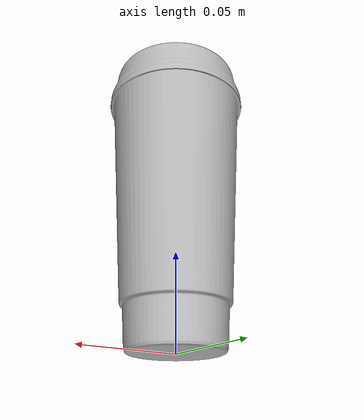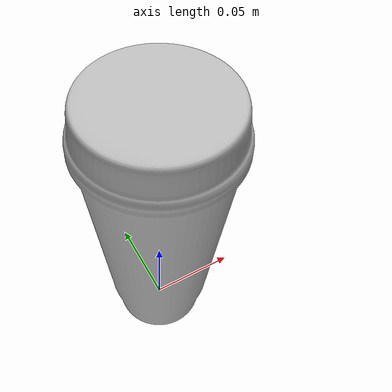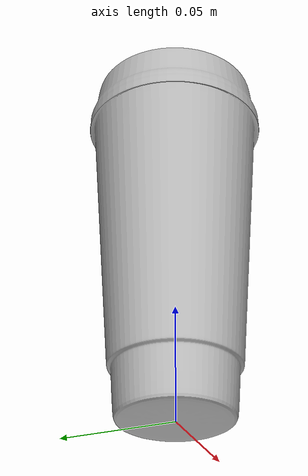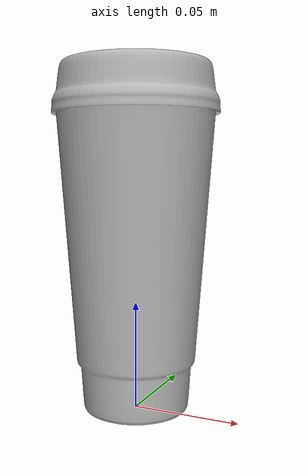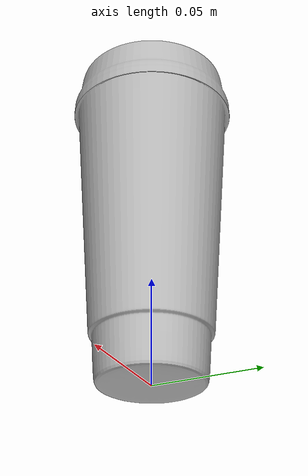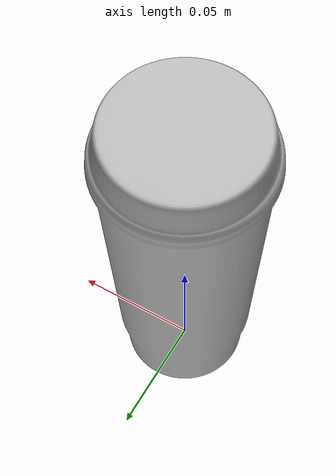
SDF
<?xml version='1.0'?>
<sdf version='1.4'>
  <model name="coffee_large">
    <pose>0 0 0  0 0 0</pose>

    <link name="body">
      <inertial>
        <mass>1</mass>
      </inertial>

      <gravity>1</gravity>

      <visual name="visual">
        <geometry>
          <mesh>
            <uri>model://costa_large/costa_coffee_large.dae</uri>
            <scale>0.01 0.01 0.01</scale>
          </mesh>
        </geometry>
      </visual>

      <collision name='collision'>
        <geometry>
            <mesh>
              <uri>model://costa_large/costa_coffee_large.dae</uri>
              <scale>0.01 0.01 0.01</scale>
            </mesh>
          </geometry>
      </collision>

      <surface>
        <friction>
          <ode>
            <mu>100.0</mu>
            <mu2>100.0</mu2>
          </ode>
        </friction>
      </surface>

    </link>

    <static>0</static>

  </model>
</sdf>
